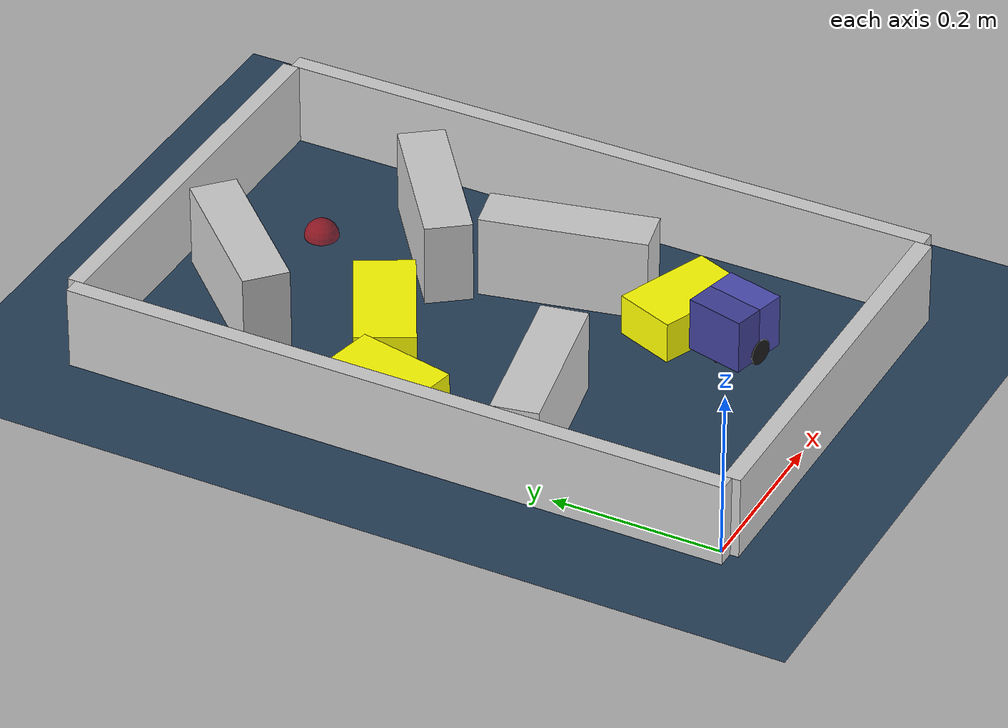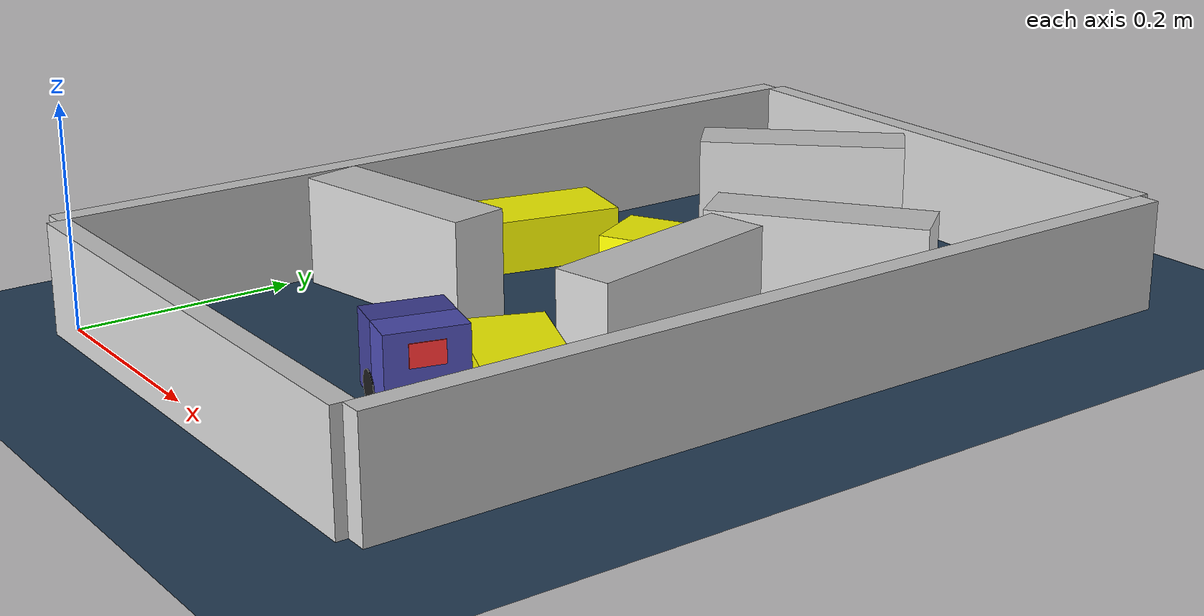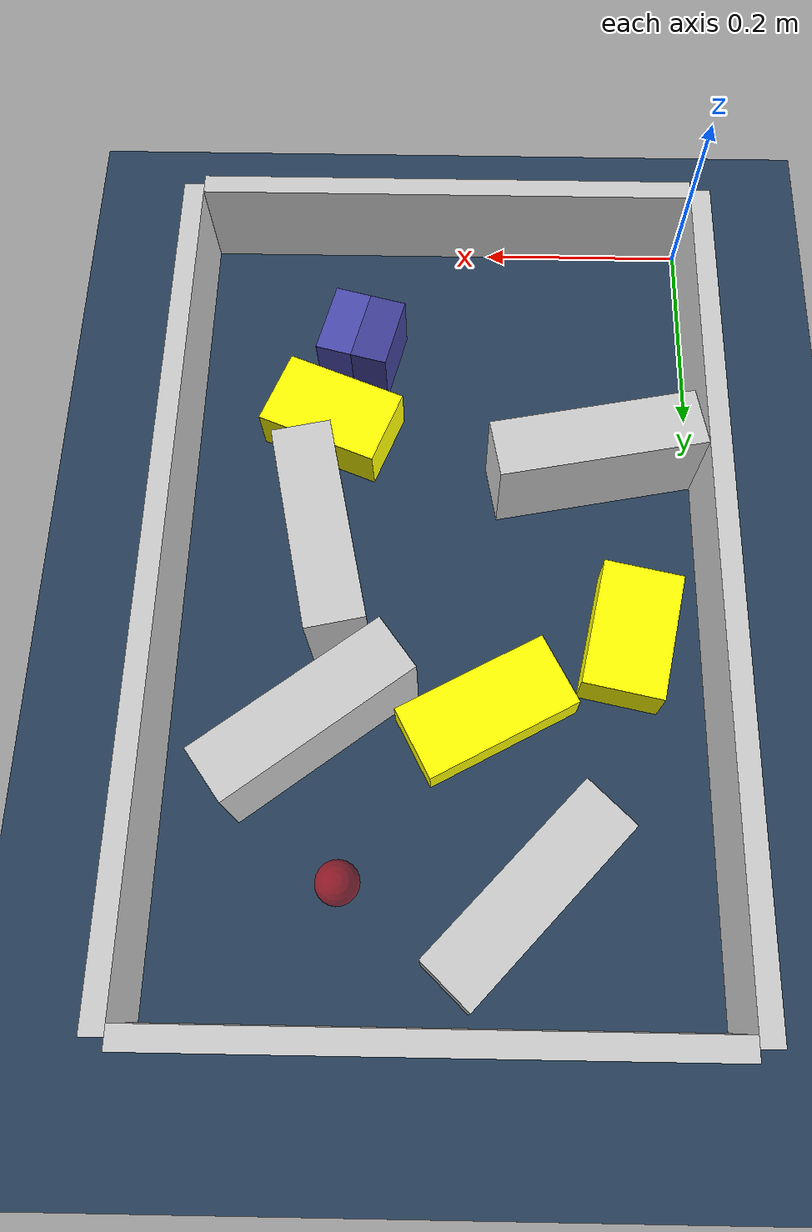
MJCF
<?xml version='1.0' encoding='utf-8'?>
<mujoco model="real_buildable">
  <compiler angle="degree" />
  <option timestep="0.002" integrator="implicitfast" iterations="100" cone="elliptic" />
  <default>
    <geom density="1" />
  </default>
  <asset>
    <texture builtin="gradient" height="3072" rgb1="0.3 0.5 0.7" rgb2="0 0 0" type="skybox" width="512" />
    <texture builtin="checker" height="300" mark="edge" markrgb="0.8 0.8 0.8" name="groundplane" rgb1="0.2 0.3 0.4" rgb2="0.1 0.2 0.3" type="2d" width="300" />
    <material name="groundplane" reflectance="0.2" texrepeat="5 5" texture="groundplane" texuniform="true" />
  </asset>
  <worldbody>
    <light dir="0 0 -1" directional="true" pos="0 0 1.5" />
    <geom name="floor" type="plane" condim="4" friction="0.5 0.005 0.001" material="groundplane" size="0 0 0.05" />
    <body name="walls">
      <geom name="wall_boundary_left" type="box" condim="4" friction="1.0 0.005 0.0001" rgba="0.8 0.8 0.8 1" pos="-0.010000 0.387500 0.050000" euler="0 0 0.000000" size="0.010000 0.397500 0.050000" />
      <geom name="wall_boundary_right" type="box" condim="4" friction="1.0 0.005 0.0001" rgba="0.8 0.8 0.8 1" pos="0.500000 0.387500 0.050000" euler="0 0 0.000000" size="0.010000 0.397500 0.050000" />
      <geom name="wall_boundary_bottom" type="box" condim="4" friction="1.0 0.005 0.0001" rgba="0.8 0.8 0.8 1" pos="0.245000 -0.010000 0.050000" euler="0 0 0.000000" size="0.245000 0.010000 0.050000" />
      <geom name="wall_boundary_top" type="box" condim="4" friction="1.0 0.005 0.0001" rgba="0.8 0.8 0.8 1" pos="0.245000 0.785000 0.050000" euler="0 0 0.000000" size="0.245000 0.010000 0.050000" />
      <geom name="wall_inner_1" type="box" condim="4" friction="1.0 0.005 0.0001" rgba="0.8 0.8 0.8 1" pos="0.101000 0.267000 0.050000" euler="0 0 10.800000" size="0.097500 0.027500 0.050000" />
      <geom name="wall_inner_2" type="box" condim="4" friction="1.0 0.005 0.0001" rgba="0.8 0.8 0.8 1" pos="0.355000 0.360000 0.050000" euler="0 0 102.200000" size="0.097500 0.027500 0.050000" />
      <geom name="wall_inner_3" type="box" condim="4" friction="1.0 0.005 0.0001" rgba="0.8 0.8 0.8 1" pos="0.169080 0.674478 0.050000" euler="0 0 46.709224" size="0.097500 0.027500 0.050000" />
      <geom name="wall_inner_4" type="box" condim="4" friction="1.0 0.005 0.0001" rgba="0.8 0.8 0.8 1" pos="0.357870 0.529609 0.050000" euler="0 0 36.793534" size="0.097500 0.027500 0.050000" />
    </body>
    <body name="car" pos="0.32671055086582018 0.14192400842920949 0.01" quat="0.99235215514983588 0 0 -0.12343905447416595">
      <freejoint name="car_freejoint" />
      <inertial pos="0 0 0.0375" mass="0.35" diaginertia="0.000266 0.000266 0.000286" />
      <geom name="front_chassis_collision" type="box" pos="0.0175 0 0.0375" size="0.0175 0.035 0.0325" rgba="0.3 0.3 0.7 1" />
      <geom name="rear_chassis_collision" type="box" pos="-0.0175 0 0.0375" size="0.0175 0.035 0.0325" rgba="0.25 0.25 0.6 1" />
      <geom name="front_marker" type="box" pos="0.034 0 0.0505" size="0.002 0.015 0.01" rgba="1 0.2 0.2 1" contype="0" conaffinity="0" />
      <body name="rear_support_body" pos="-0.03 0 0.0025">
        <joint name="rear_caster_joint" type="ball" damping="0.0001" />
        <inertial pos="0 0 0" mass="0.025" diaginertia="0.000001 0.000001 0.000001" />
        <geom name="rear_support" type="sphere" pos="0 0 0" size="0.0025" friction="0 0 0" rgba="0.7 0.1 0.1 1" />
      </body>
      <body name="front_support_body" pos="0.03 0 0.0025">
        <joint name="front_caster_joint" type="ball" damping="0.0001" />
        <inertial pos="0 0 0" mass="0.025" diaginertia="0.000001 0.000001 0.000001" />
        <geom name="front_support" type="sphere" pos="0 0 0" size="0.0025" friction="0 0 0" rgba="0.1 0.7 0.1 1" />
      </body>
      <body name="left_wheel" pos="0 0.0375 0.015">
        <inertial pos="0 0 0" mass="0.05" diaginertia="0.000003 0.000006 0.000003" />
        <joint name="left_wheel_joint" type="hinge" axis="0 1 0" damping="0.01" armature="0.0001" />
        <geom name="left_wheel_collision" type="cylinder" size="0.015 0.0005" euler="90 0 0" rgba="0.1 0.1 0.1 1" />
      </body>
      <body name="right_wheel" pos="0 -0.0375 0.015">
        <inertial pos="0 0 0" mass="0.05" diaginertia="0.000003 0.000006 0.000003" />
        <joint name="right_wheel_joint" type="hinge" axis="0 1 0" damping="0.01" armature="0.0001" />
        <geom name="right_wheel_collision" type="cylinder" size="0.015 0.0005" euler="90 0 0" rgba="0.1 0.1 0.1 1" />
      </body>
    </body>
    <body name="obstacle_0_movable">
      <geom name="obstacle_0_movable" condim="4" pos="0.35449715229510803 0.21629355290859581 0.025000000000000001" friction="1 0.005 0.0001" rgba="1 1 0 1" size="0.037500 0.060000 0.025000" type="box" mass="0.1" quat="0.82704070075137448 0 0 0.56214204548376867" />
      <joint type="free" />
    </body>
    <body name="obstacle_1_movable">
      <geom name="obstacle_1_movable" condim="4" pos="0.20117400000000005 0.50999999999999934 0.02" friction="1 0.005 0.0001" rgba="1 1 0 1" size="0.035000 0.075000 0.020000" type="box" mass="0.1" quat="0.51361469276448224 0 0 0.85802094809884832" />
      <joint type="free" />
    </body>
    <body name="obstacle_2_movable">
      <geom name="obstacle_2_movable" condim="4" pos="0.069183999999999954 0.43925799999999987 0.025000000000000001" friction="1 0.005 0.0001" rgba="1 1 0 1" size="0.037500 0.060000 0.025000" type="box" mass="0.1" quat="0.10328761176739372 0 0 0.99465153157042296" />
      <joint type="free" />
    </body>
    <site name="goal" type="sphere" pos="0.330000 0.660000 0.0" size="0.02" rgba="1 0 0 0.5" />
  </worldbody>
  <actuator>
    <velocity name="left_wheel_drive" joint="left_wheel_joint" ctrlrange="-25 25" kv="0.75" forcerange="-0.5 0.5" />
    <velocity name="right_wheel_drive" joint="right_wheel_joint" ctrlrange="-25 25" kv="0.75" forcerange="-0.5 0.5" />
  </actuator>
</mujoco>
